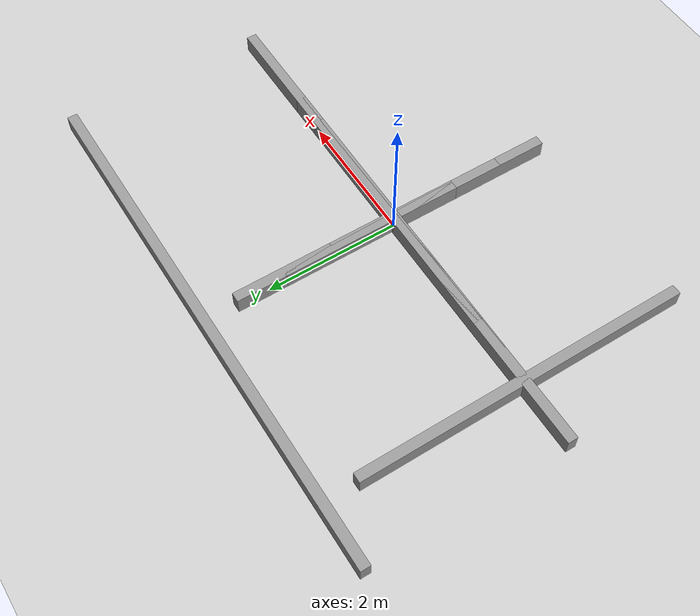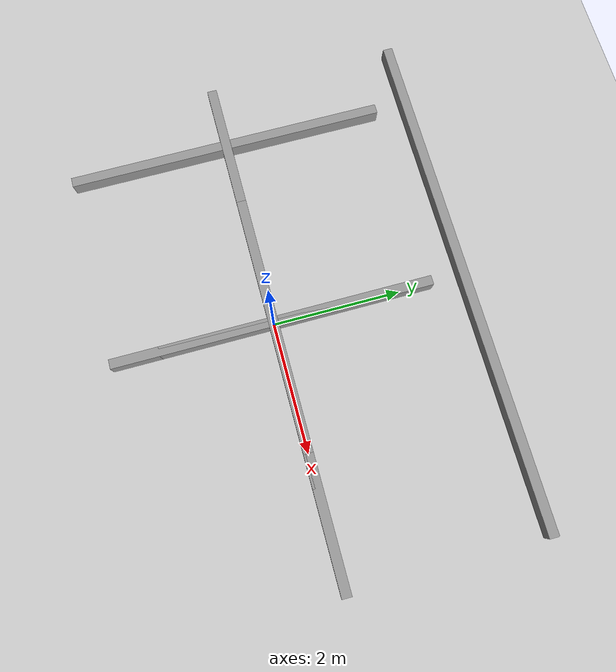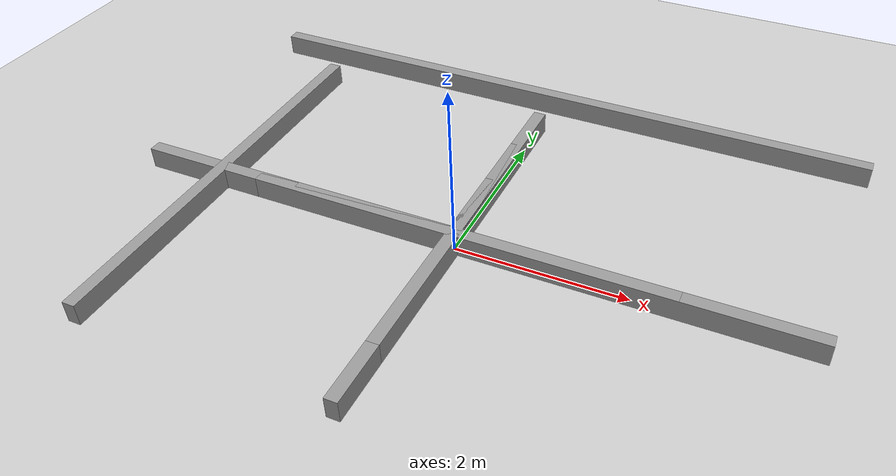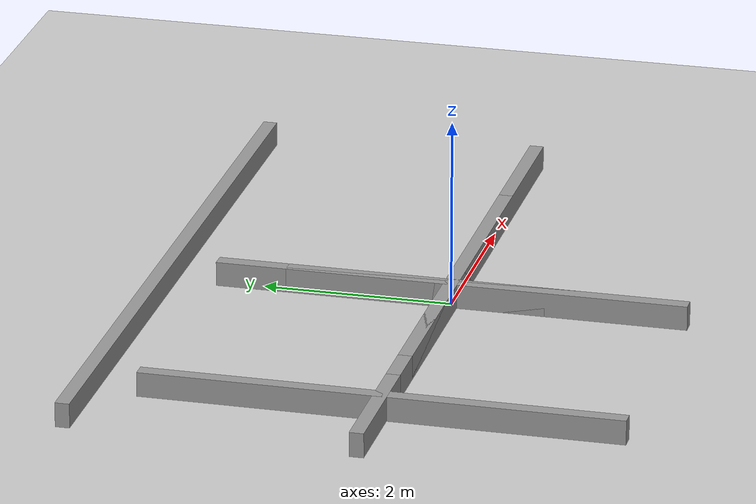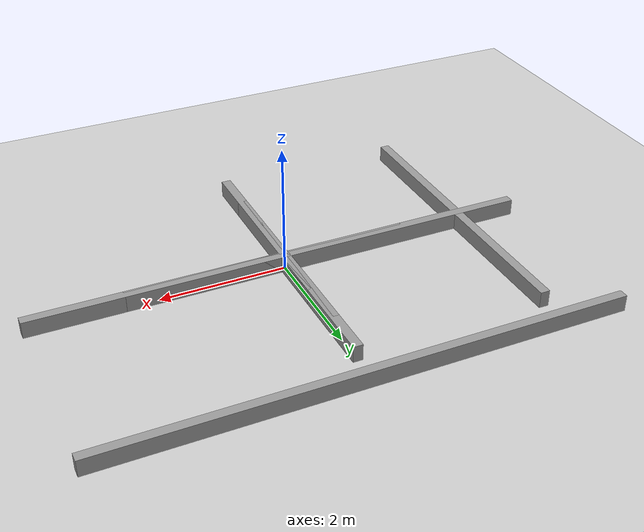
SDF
<sdf version="1.6">
 <world name="default">
  <model name="ground_plane">
   <static>1</static>
   <link name="link">
    <collision name="collision">
     <geometry><plane><normal>0 0 1</normal><size>100 100</size></plane></geometry>
     <surface><friction><ode><mu>100</mu><mu2>50</mu2></ode></friction></surface>
    </collision>
    <visual name="visual">
     <cast_shadows>0</cast_shadows>
     <geometry><plane><normal>0 0 1</normal><size>100 100</size></plane></geometry>
     <material>
      <script><uri>file://media/materials/scripts/gazebo.material</uri><name>Gazebo/Grey</name></script>
     </material>
    </visual>
   </link>
  </model>
  <gravity>0 0 -9.8</gravity>
  <magnetic_field>6e-06 2.3e-05 -4.2e-05</magnetic_field>
  <atmosphere type="adiabatic"/>
  <physics name="default_physics" default="0" type="ode">
   <max_step_size>0.001</max_step_size>
   <real_time_factor>1</real_time_factor>
   <real_time_update_rate>1000</real_time_update_rate>
  </physics>
  <scene><ambient>0.4 0.4 0.4 1</ambient><background>0.7 0.7 0.7 1</background><shadows>1</shadows></scene>
  <audio><device>default</device></audio>
  <spherical_coordinates>
   <surface_model>EARTH_WGS84</surface_model>
   <latitude_deg>0</latitude_deg>
   <longitude_deg>0</longitude_deg>
   <elevation>0</elevation>
   <heading_deg>0</heading_deg>
  </spherical_coordinates>
  <model name="square_area">
   <link name="Wall_0">
    <collision name="Wall_0_Collision"><geometry><box><size>8 0.15 0.5</size></box></geometry></collision>
    <visual name="Wall_0_Visual">
     <geometry><box><size>8 0.15 0.5</size></box></geometry>
     <material>
      <script><uri>file://media/materials/scripts/gazebo.material</uri><name>Gazebo/Grey</name></script>
      <ambient>1 1 1 1</ambient>
     </material>
     <meta><layer>0</layer></meta>
    </visual>
    <pose>0 0 0 0 -0 3.14159</pose>
   </link>
   <link name="Wall_1">
    <collision name="Wall_1_Collision"><geometry><box><size>5 0.15 0.5</size></box></geometry></collision>
    <visual name="Wall_1_Visual">
     <geometry><box><size>5 0.15 0.5</size></box></geometry>
     <material>
      <script><uri>file://media/materials/scripts/gazebo.material</uri><name>Gazebo/Grey</name></script>
      <ambient>1 1 1 1</ambient>
     </material>
     <meta><layer>0</layer></meta>
    </visual>
    <pose>-3 0 0 0 -0 1.5708</pose>
   </link>
   <link name="Wall_2">
    <collision name="Wall_2_Collision"><geometry><box><size>8 0.15 0.5</size></box></geometry></collision>
    <visual name="Wall_2_Visual">
     <geometry><box><size>8  0.15 0.5</size></box></geometry>
     <material>
      <script><uri>file://media/materials/scripts/gazebo.material</uri><name>Gazebo/Grey</name></script>
      <ambient>1 1 1 1</ambient>
     </material>
     <meta><layer>0</layer></meta>
    </visual>
    <pose>0 3 0 0 -0 0</pose>
   </link>
   <link name="Wall_3">
    <collision name="Wall_3_Collision"><geometry><box><size>5 0.15 0.5</size></box></geometry></collision>
    <visual name="Wall_3_Visual">
     <geometry><box><size>5 0.15 0.5</size></box></geometry>
     <material>
      <script><uri>file://media/materials/scripts/gazebo.material</uri><name>Gazebo/Grey</name></script>
      <ambient>1 1 1 1</ambient>
     </material>
     <meta><layer>0</layer></meta>
    </visual>
    <pose>0 0 0 0 -0 -1.5708</pose>
   </link>
   <static>1</static>
  </model>
  <model name="traps">
   <link name="trap_0">
    <collision name="trap_0_Collision"><geometry><box><size>5 0.15 0.5</size></box></geometry></collision>
    <visual name="trap_0_Visual">
     <geometry><box><size>5 0.15 0.5</size></box></geometry>
     <material>
      <script><uri>file://media/materials/scripts/gazebo.material</uri><name>Gazebo/Grey</name></script>
      <ambient>1 1 1 1</ambient>
     </material>
     <meta><layer>0</layer></meta>
    </visual>
   </link>
   <link name="trap_1">
    <collision name="trap_1_Collision"><geometry><box><size>3.5 0.15 0.5</size></box></geometry></collision>
    <visual name="trap_1_Visual">
     <geometry><box><size>3.5 0.15 0.5</size></box></geometry>
     <material>
      <script><uri>file://media/materials/scripts/gazebo.material</uri><name>Gazebo/Grey</name></script>
      <ambient>1 1 1 1</ambient>
     </material>
     <meta><layer>0</layer></meta>
    </visual>
    <pose>0 0 0 0 -0 1.5708</pose>
   </link>
   <link name="trap_2">
    <collision name="trap_2_Collision"><geometry><box><size>4 0.15 0.5</size></box></geometry></collision>
    <visual name="trap_2_Visual">
     <geometry><box><size>4 0.15 0.5</size></box></geometry>
     <material>
      <script><uri>file://media/materials/scripts/gazebo.material</uri><name>Gazebo/Grey</name></script>
      <ambient>1 1 1 1</ambient>
     </material>
     <meta><layer>0</layer></meta>
    </visual>
   </link>
   <link name="trap_3">
    <collision name="trap_3_Collision"><geometry><box><size>2 0.15 0.5</size></box></geometry></collision>
    <visual name="trap_3_Visual">
     <geometry><box><size>2 0.15 0.5</size></box></geometry>
     <material>
      <script><uri>file://media/materials/scripts/gazebo.material</uri><name>Gazebo/Grey</name></script>
      <ambient>1 1 1 1</ambient>
     </material>
     <meta><layer>0</layer></meta>
    </visual>
    <pose>0 0 0 0 -0 -1.5708</pose>
   </link>
   <static>1</static>
  </model>
  <light name="user_point_light_0" type="point">
   <pose>0.002484 -0.070725 1 0 -0 0</pose>
   <diffuse>0.5 0.5 0.5 1</diffuse>
   <specular>0.1 0.1 0.1 1</specular>
   <attenuation>
    <range>20</range>
    <constant>0.5</constant>
    <linear>0.01</linear>
    <quadratic>0.001</quadratic>
   </attenuation>
   <cast_shadows>0</cast_shadows>
   <direction>0 0 -1</direction>
  </light>
 </world>
</sdf>
